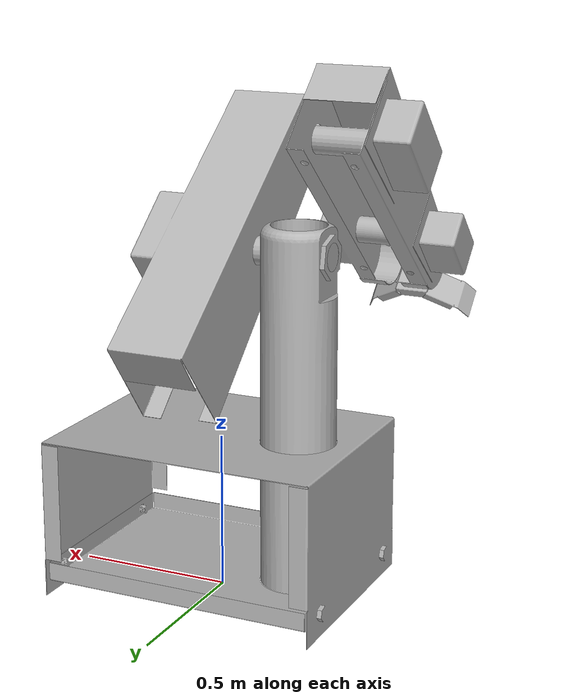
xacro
<?xml version="1.0" ?>
<robot name="urdf-created-robot-arm" xmlns:xacro="http://www.ros.org/wiki/xacro">

<xacro:include filename="$(find urdf-created-robot-arm_description)/urdf/materials.xacro" />
<xacro:include filename="$(find urdf-created-robot-arm_description)/urdf/urdf-created-robot-arm.trans" />
<xacro:include filename="$(find urdf-created-robot-arm_description)/urdf/urdf-created-robot-arm.gazebo" />
<link name="base_link">
  <inertial>
    <origin xyz="0.011212285461385812 3.7440178664630766e-05 0.26610601777637316" rpy="0 0 0"/>
    <mass value="41.97260234696919"/>
    <inertia ixx="3.636239" iyy="6.762527" izz="7.131112" ixy="0.000191" iyz="0.000144" ixz="-0.012625"/>
  </inertial>
  <visual>
    <origin xyz="0 0 0" rpy="0 0 0"/>
    <geometry>
      <mesh filename="package://urdf-created-robot-arm_description/meshes/base_link.stl" scale="0.001 0.001 0.001"/>
    </geometry>
    <material name="silver"/>
  </visual>
  <collision>
    <origin xyz="0 0 0" rpy="0 0 0"/>
    <geometry>
      <mesh filename="package://urdf-created-robot-arm_description/meshes/base_link.stl" scale="0.001 0.001 0.001"/>
    </geometry>
  </collision>
</link>

<link name="grip2_1">
  <inertial>
    <origin xyz="0.06669822505310585 -0.05129673726504047 0.009231213593641985" rpy="0 0 0"/>
    <mass value="0.5101839438481947"/>
    <inertia ixx="0.001245" iyy="0.00148" izz="0.00148" ixy="0.000449" iyz="8.7e-05" ixz="0.000449"/>
  </inertial>
  <visual>
    <origin xyz="0.24164 0.911802 -0.7855" rpy="0 0 0"/>
    <geometry>
      <mesh filename="package://urdf-created-robot-arm_description/meshes/grip2_1.stl" scale="0.001 0.001 0.001"/>
    </geometry>
    <material name="silver"/>
  </visual>
  <collision>
    <origin xyz="0.24164 0.911802 -0.7855" rpy="0 0 0"/>
    <geometry>
      <mesh filename="package://urdf-created-robot-arm_description/meshes/grip2_1.stl" scale="0.001 0.001 0.001"/>
    </geometry>
  </collision>
</link>

<link name="grip1_1">
  <inertial>
    <origin xyz="-0.06683730879035193 -0.05143876844297823 0.009089182415703001" rpy="0 0 0"/>
    <mass value="0.5152649517699479"/>
    <inertia ixx="0.001261" iyy="0.001489" izz="0.001489" ixy="-0.00045" iyz="9.3e-05" ixz="-0.00045"/>
  </inertial>
  <visual>
    <origin xyz="0.34364 0.911802 -0.7855" rpy="0 0 0"/>
    <geometry>
      <mesh filename="package://urdf-created-robot-arm_description/meshes/grip1_1.stl" scale="0.001 0.001 0.001"/>
    </geometry>
    <material name="silver"/>
  </visual>
  <collision>
    <origin xyz="0.34364 0.911802 -0.7855" rpy="0 0 0"/>
    <geometry>
      <mesh filename="package://urdf-created-robot-arm_description/meshes/grip1_1.stl" scale="0.001 0.001 0.001"/>
    </geometry>
  </collision>
</link>

<link name="rod-link_1">
  <inertial>
    <origin xyz="-0.00017794322550324093 6.160532441936682e-07 0.5308194187745353" rpy="0 0 0"/>
    <mass value="171.02496844298523"/>
    <inertia ixx="19.425321" iyy="19.361664" izz="1.790332" ixy="1e-05" iyz="-5.4e-05" ixz="0.016118"/>
  </inertial>
  <visual>
    <origin xyz="0.265 -0.0 -0.0645" rpy="0 0 0"/>
    <geometry>
      <mesh filename="package://urdf-created-robot-arm_description/meshes/rod-link_1.stl" scale="0.001 0.001 0.001"/>
    </geometry>
    <material name="silver"/>
  </visual>
  <collision>
    <origin xyz="0.265 -0.0 -0.0645" rpy="0 0 0"/>
    <geometry>
      <mesh filename="package://urdf-created-robot-arm_description/meshes/rod-link_1.stl" scale="0.001 0.001 0.001"/>
    </geometry>
  </collision>
</link>

<link name="grip-rod_1">
  <inertial>
    <origin xyz="0.11999977269486145 0.0027411693482291 0.002740856138199854" rpy="0 0 0"/>
    <mass value="14.309579519121037"/>
    <inertia ixx="0.012445" iyy="0.152918" izz="0.152918" ixy="-0.0" iyz="0.000675" ixz="0.0"/>
  </inertial>
  <visual>
    <origin xyz="0.41264 0.712925 -1.044481" rpy="0 0 0"/>
    <geometry>
      <mesh filename="package://urdf-created-robot-arm_description/meshes/grip-rod_1.stl" scale="0.001 0.001 0.001"/>
    </geometry>
    <material name="silver"/>
  </visual>
  <collision>
    <origin xyz="0.41264 0.712925 -1.044481" rpy="0 0 0"/>
    <geometry>
      <mesh filename="package://urdf-created-robot-arm_description/meshes/grip-rod_1.stl" scale="0.001 0.001 0.001"/>
    </geometry>
  </collision>
</link>

<link name="grip-base_1">
  <inertial>
    <origin xyz="-2.2730520748970306e-07 -0.14473194208198392 -0.1447322552920135" rpy="0 0 0"/>
    <mass value="0.6778830737105473"/>
    <inertia ixx="0.006" iyy="0.003461" izz="0.003461" ixy="-0.0" iyz="-0.002537" ixz="-0.0"/>
  </inertial>
  <visual>
    <origin xyz="0.29264 0.736793 -1.020613" rpy="0 0 0"/>
    <geometry>
      <mesh filename="package://urdf-created-robot-arm_description/meshes/grip-base_1.stl" scale="0.001 0.001 0.001"/>
    </geometry>
    <material name="silver"/>
  </visual>
  <collision>
    <origin xyz="0.29264 0.736793 -1.020613" rpy="0 0 0"/>
    <geometry>
      <mesh filename="package://urdf-created-robot-arm_description/meshes/grip-base_1.stl" scale="0.001 0.001 0.001"/>
    </geometry>
  </collision>
</link>

<link name="arm1_1">
  <inertial>
    <origin xyz="0.15213625068449144 0.03127568940503136 -0.02094141776146552" rpy="0 0 0"/>
    <mass value="58.27977217016352"/>
    <inertia ixx="1.703468" iyy="2.244142" izz="2.491282" ixy="-0.008002" iyz="0.645254" ixz="0.005302"/>
  </inertial>
  <visual>
    <origin xyz="0.16614 -0.0 -1.1145" rpy="0 0 0"/>
    <geometry>
      <mesh filename="package://urdf-created-robot-arm_description/meshes/arm1_1.stl" scale="0.001 0.001 0.001"/>
    </geometry>
    <material name="silver"/>
  </visual>
  <collision>
    <origin xyz="0.16614 -0.0 -1.1145" rpy="0 0 0"/>
    <geometry>
      <mesh filename="package://urdf-created-robot-arm_description/meshes/arm1_1.stl" scale="0.001 0.001 0.001"/>
    </geometry>
  </collision>
</link>

<link name="arm2_1">
  <inertial>
    <origin xyz="-0.14547625429899594 -0.11145605239659284 -0.10924584240081248" rpy="0 0 0"/>
    <mass value="70.55683920742048"/>
    <inertia ixx="4.756159" iyy="4.783677" izz="4.832867" ixy="-0.138355" iyz="-2.108405" ixz="-0.122322"/>
  </inertial>
  <visual>
    <origin xyz="0.13064 0.34107 -1.408016" rpy="0 0 0"/>
    <geometry>
      <mesh filename="package://urdf-created-robot-arm_description/meshes/arm2_1.stl" scale="0.001 0.001 0.001"/>
    </geometry>
    <material name="silver"/>
  </visual>
  <collision>
    <origin xyz="0.13064 0.34107 -1.408016" rpy="0 0 0"/>
    <geometry>
      <mesh filename="package://urdf-created-robot-arm_description/meshes/arm2_1.stl" scale="0.001 0.001 0.001"/>
    </geometry>
  </collision>
</link>

<joint name="grip-base-to-grip" type="revolute">
  <origin xyz="0.051 -0.175009 -0.235113" rpy="0 0 0"/>
  <parent link="grip-base_1"/>
  <child link="grip2_1"/>
  <axis xyz="-0.0 0.707107 -0.707107"/>
  <limit upper="1.22173" lower="0.0" effort="100" velocity="100"/>
</joint>

<joint name="grip-base-to-grip2" type="revolute">
  <origin xyz="-0.051 -0.175009 -0.235113" rpy="0 0 0"/>
  <parent link="grip-base_1"/>
  <child link="grip1_1"/>
  <axis xyz="-0.0 0.707107 -0.707107"/>
  <limit upper="0.0" lower="-1.22173" effort="100" velocity="100"/>
</joint>

<joint name="base-to-rod" type="revolute">
  <origin xyz="-0.265 0.0 0.0645" rpy="0 0 0"/>
  <parent link="base_link"/>
  <child link="rod-link_1"/>
  <axis xyz="0.0 0.0 -1.0"/>
  <limit upper="3.141593" lower="-3.141593" effort="100" velocity="100"/>
</joint>

<joint name="arm2-to-grip-rod" type="revolute">
  <origin xyz="-0.282 -0.371855 -0.363535" rpy="0 0 0"/>
  <parent link="arm2_1"/>
  <child link="grip-rod_1"/>
  <axis xyz="-1.0 -0.0 -0.0"/>
  <limit upper="0.523599" lower="-0.523599" effort="100" velocity="100"/>
</joint>

<joint name="grip-rod-to-grip-bse" type="revolute">
  <origin xyz="0.12 -0.023868 -0.023868" rpy="0 0 0"/>
  <parent link="grip-rod_1"/>
  <child link="grip-base_1"/>
  <axis xyz="-0.0 0.707107 0.707107"/>
  <limit upper="3.141593" lower="-3.141593" effort="100" velocity="100"/>
</joint>

<joint name="rod-to-arm1" type="revolute">
  <origin xyz="0.09886 0.0 1.05" rpy="0 0 0"/>
  <parent link="rod-link_1"/>
  <child link="arm1_1"/>
  <axis xyz="-1.0 0.0 0.0"/>
  <limit upper="2.617994" lower="-0.872665" effort="100" velocity="100"/>
</joint>

<joint name="1sr-arm-to-2nd-arm" type="revolute">
  <origin xyz="0.0355 -0.34107 0.293516" rpy="0 0 0"/>
  <parent link="arm1_1"/>
  <child link="arm2_1"/>
  <axis xyz="-1.0 -0.0 -0.0"/>
  <limit upper="3.839724" lower="-0.523599" effort="100" velocity="100"/>
</joint>

</robot>

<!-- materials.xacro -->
<robot name="urdf-created-robot-arm" xmlns:xacro="http://www.ros.org/wiki/xacro" >

<material name="silver">
  <color rgba="0.700 0.700 0.700 1.000"/>
</material>

</robot>

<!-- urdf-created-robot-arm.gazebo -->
<robot name="urdf-created-robot-arm" xmlns:xacro="http://www.ros.org/wiki/xacro" >

<xacro:property name="body_color" value="Gazebo/Silver" />

<gazebo>
  <plugin name="control" filename="libgazebo_ros_control.so"/>
</gazebo>
<gazebo reference="base_link">
  <material>${body_color}</material>
  <mu1>0.2</mu1>
  <mu2>0.2</mu2>
  <selfCollide>true</selfCollide>
  <gravity>true</gravity>
</gazebo>

<gazebo reference="grip2_1">
  <material>${body_color}</material>
  <mu1>0.2</mu1>
  <mu2>0.2</mu2>
  <selfCollide>true</selfCollide>
</gazebo>

<gazebo reference="grip1_1">
  <material>${body_color}</material>
  <mu1>0.2</mu1>
  <mu2>0.2</mu2>
  <selfCollide>true</selfCollide>
</gazebo>

<gazebo reference="rod-link_1">
  <material>${body_color}</material>
  <mu1>0.2</mu1>
  <mu2>0.2</mu2>
  <selfCollide>true</selfCollide>
</gazebo>

<gazebo reference="grip-rod_1">
  <material>${body_color}</material>
  <mu1>0.2</mu1>
  <mu2>0.2</mu2>
  <selfCollide>true</selfCollide>
</gazebo>

<gazebo reference="grip-base_1">
  <material>${body_color}</material>
  <mu1>0.2</mu1>
  <mu2>0.2</mu2>
  <selfCollide>true</selfCollide>
</gazebo>

<gazebo reference="arm1_1">
  <material>${body_color}</material>
  <mu1>0.2</mu1>
  <mu2>0.2</mu2>
  <selfCollide>true</selfCollide>
</gazebo>

<gazebo reference="arm2_1">
  <material>${body_color}</material>
  <mu1>0.2</mu1>
  <mu2>0.2</mu2>
  <selfCollide>true</selfCollide>
</gazebo>

</robot>
